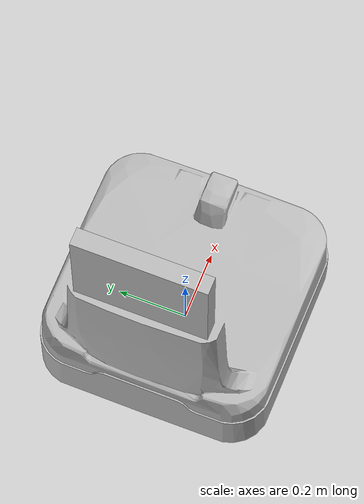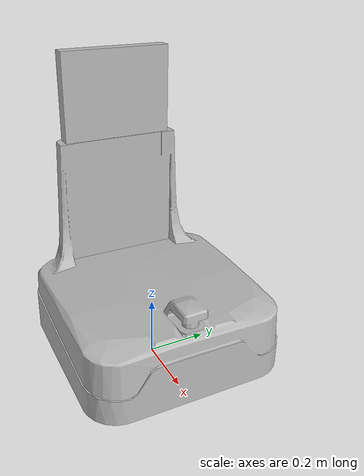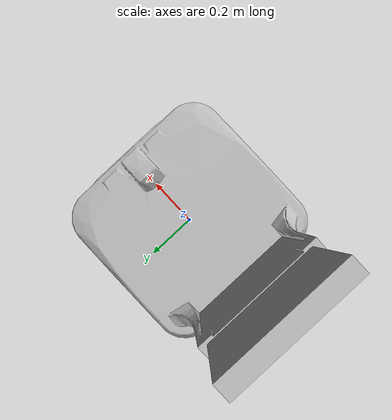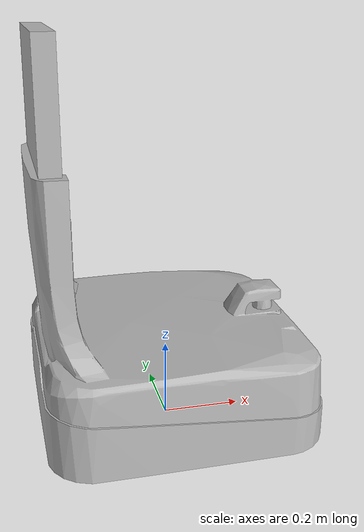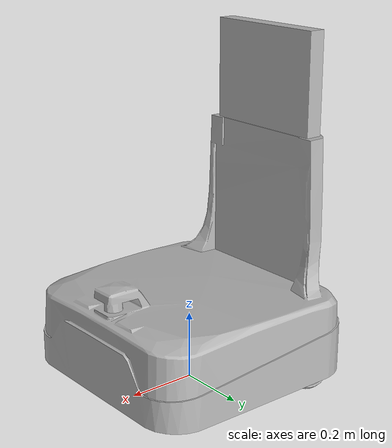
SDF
<?xml version="1.0" ?>
<sdf version="1.5">
  <model name="pr2">
    <static>0</static>
    <link name="base_footprint">
      <self_collide>0</self_collide>
      <inertial>
        <mass>118.001000</mass>
        <pose>-0.062421 0.000000 0.201365 0.000000 -0.000000 0.000000</pose>
        <inertia>
          <ixx>8.431730</ixx>
          <ixy>-0.009720</ixy>
          <ixz>1.901570</ixz>
          <iyy>8.533050</iyy>
          <iyz>-0.007380</iyz>
          <izz>3.787470</izz>
        </inertia>
      </inertial>
      <collision name="base_footprint_geom">
        <pose>0.000000 0.000000 0.071000 0.000000 -0.000000 0.000000</pose>
        <geometry>
          <box>
            <size>0.001000 0.001000 0.001000</size>
          </box>
        </geometry>
      </collision>
      <visual name="base_footprint_geom_visual">
        <geometry>
          <box>
            <size>0.010000 0.010000 0.010000</size>
          </box>
        </geometry>
      </visual>
      <collision name="base_footprint_geom_base_bellow_link">
        <pose>-0.290000 0.000000 0.851000 0.000000 -0.000000 0.000000</pose>
        <geometry>
          <box>
            <size>0.050000 0.370000 0.300000</size>
          </box>
        </geometry>
      </collision>
      <visual name="base_footprint_geom_base_bellow_link_visual">
        <pose>-0.290000 0.000000 0.851000 0.000000 -0.000000 0.000000</pose>
        <geometry>
          <box>
            <size>0.050000 0.370000 0.300000</size>
          </box>
        </geometry>
      </visual>
      <collision name="base_footprint_geom_base_link">
        <pose>0.000000 0.000000 0.051000 0.000000 -0.000000 0.000000</pose>
        <geometry>
          <mesh>
            <uri>model://pr2/meshes/base_v0/base_L.stl</uri>
          </mesh>
        </geometry>
      </collision>
      <visual name="base_footprint_geom_base_link_visual">
        <pose>0.000000 0.000000 0.051000 0.000000 -0.000000 0.000000</pose>
        <geometry>
          <mesh>
            <uri>model://pr2/meshes/base_v0/base.dae</uri>
          </mesh>
        </geometry>
      </visual>
      <sensor name="base_contact_sensor" type="contact">
        <update_rate>100.000000</update_rate>
        <contact>
          <collision>base_footprint_geom_base_link</collision>
          <topic>__default_topic__</topic>
        </contact>
        <plugin name="gazebo_contact" filename="libContactPlugin.so" />
      </sensor>
      <sensor name="base_laser" type="ray">
        <always_on>1</always_on>
        <visualize>1</visualize>
        <update_rate>20.000000</update_rate>
        <pose>0.275000 0.000000 0.303000 0.000000 -0.000000 0.000000</pose>
        <ray>
          <scan>
            <horizontal>
              <samples>640</samples>
              <resolution>1.000000</resolution>
              <min_angle>-2.268900</min_angle>
              <max_angle>2.268900</max_angle>
            </horizontal>
          </scan>
          <range>
            <min>0.080000</min>
            <max>10.000000</max>
            <resolution>0.010000</resolution>
          </range>
        </ray>
        <plugin name="laser" filename="libRayPlugin.so" />
      </sensor>
      <velocity_decay />
    </link>
    <link name="bl_caster_rotation_link">
      <self_collide>0</self_collide>
      <pose>-0.224600 0.224600 0.079200 0.000000 -0.000000 0.000000</pose>
      <inertial>
        <mass>3.473080</mass>
        <pose>0.000000 0.000000 0.070000 0.000000 -0.000000 0.000000</pose>
        <inertia>
          <ixx>0.012412</ixx>
          <ixy>-0.000712</ixy>
          <ixz>0.000503</ixz>
          <iyy>0.015218</iyy>
          <iyz>-0.000004</iyz>
          <izz>0.011764</izz>
        </inertia>
      </inertial>
      <collision name="bl_caster_rotation_link_geom">
        <geometry>
          <mesh>
            <uri>model://pr2/meshes/base_v0/caster_L.stl</uri>
          </mesh>
        </geometry>
      </collision>
      <visual name="bl_caster_rotation_link_geom_visual">
        <geometry>
          <mesh>
            <uri>model://pr2/meshes/base_v0/caster.stl</uri>
          </mesh>
        </geometry>
      </visual>
      <velocity_decay />
    </link>
    <link name="bl_caster_l_wheel_link">
      <self_collide>0</self_collide>
      <pose>-0.224600 0.273600 0.079200 0.000000 -0.000000 0.000000</pose>
      <inertial>
        <mass>0.440360</mass>
        <inertia>
          <ixx>0.012412</ixx>
          <ixy>-0.000712</ixy>
          <ixz>0.000503</ixz>
          <iyy>0.015218</iyy>
          <iyz>-0.000004</iyz>
          <izz>0.011764</izz>
        </inertia>
      </inertial>
      <collision name="bl_caster_l_wheel_link_geom">
        <pose>0.000000 0.000000 0.000000 1.570800 -0.000000 0.000000</pose>
        <geometry>
          <cylinder>
            <radius>0.074792</radius>
            <length>0.034000</length>
          </cylinder>
        </geometry>
      </collision>
      <visual name="bl_caster_l_wheel_link_geom_visual">
        <geometry>
          <mesh>
            <uri>model://pr2/meshes/base_v0/wheel.dae</uri>
          </mesh>
        </geometry>
      </visual>
      <velocity_decay />
    </link>
    <joint name="bl_caster_rotation_joint" type="revolute">
      <parent>base_footprint</parent>
      <child>bl_caster_rotation_link</child>
      <axis>
        <xyz>0.000000 0.000000 1.000000</xyz>
        <limit>
          <lower>-10000000000000000.000000</lower>
          <upper>10000000000000000.000000</upper>
          <effort>0.000000</effort>
          <velocity>4.000000</velocity>
        </limit>
        <use_parent_model_frame>true</use_parent_model_frame>
      </axis>
    </joint>
  </model>
</sdf>
